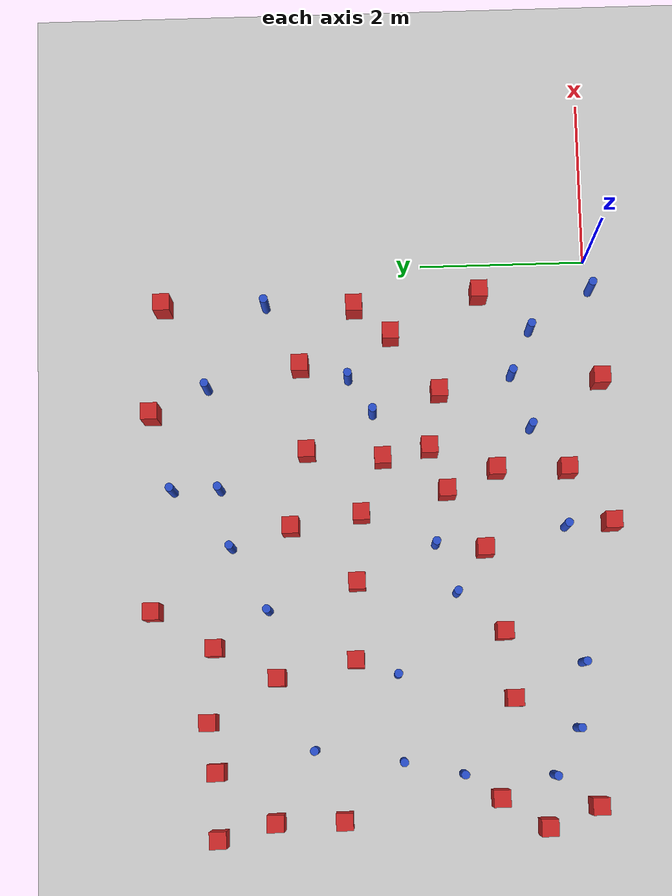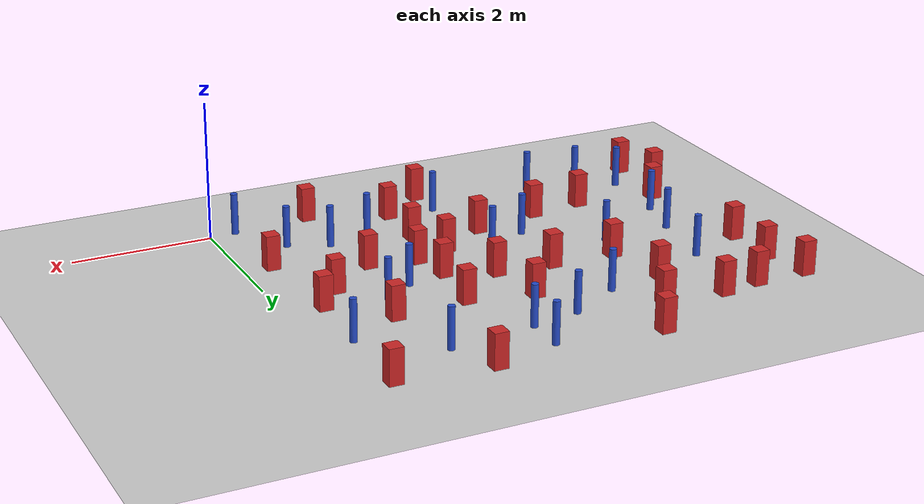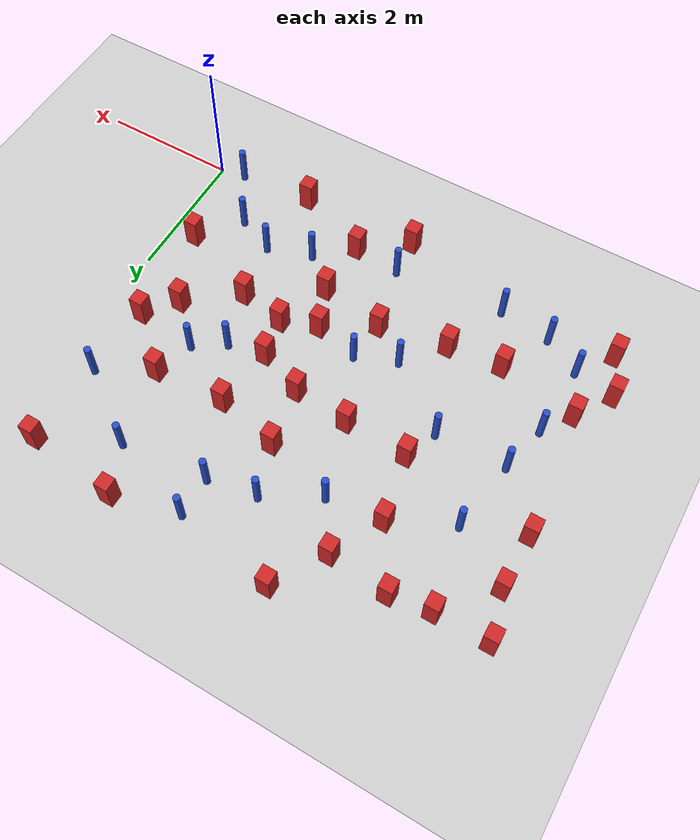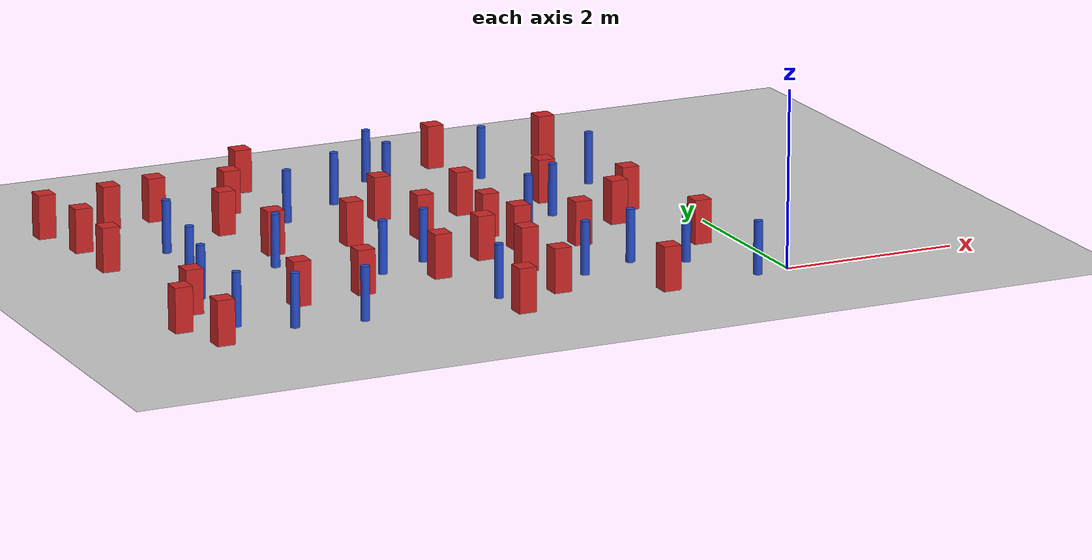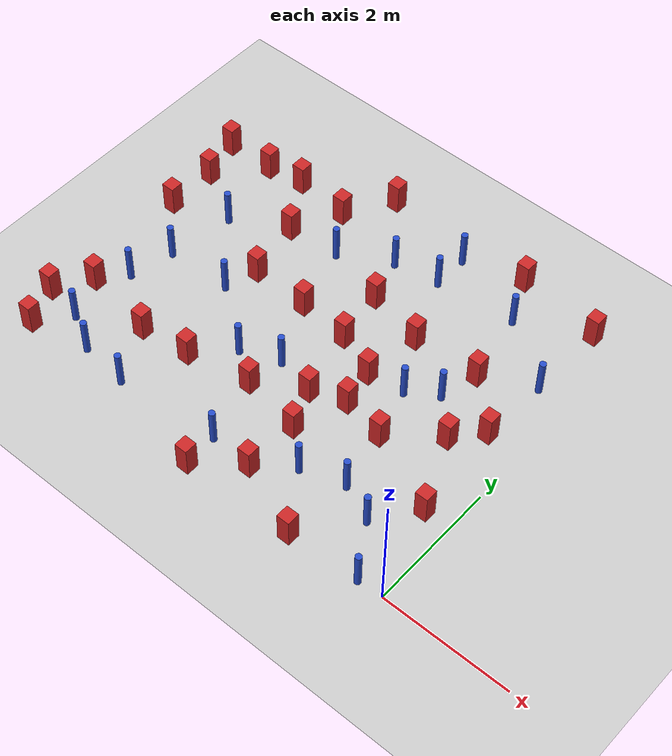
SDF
<sdf version="1.6">
 <world name="default">
  <model name="ground_plane">
   <static>1</static>
   <link name="link">
    <collision name="collision">
     <geometry><plane><normal>0 0 1</normal><size>100 100</size></plane></geometry>
     <surface><friction><ode><mu>100</mu><mu2>50</mu2></ode></friction></surface>
    </collision>
    <visual name="visual">
     <cast_shadows>0</cast_shadows>
     <geometry><plane><normal>0 0 1</normal><size>100 100</size></plane></geometry>
     <material>
      <ambient>1.0 1.0 1.0 1.0</ambient>
      <diffuse>0.8 0.8 0.8 1.0</diffuse>
      <specular>0.01 0.01 0.01 1.000000</specular>
     </material>
    </visual>
   </link>
  </model>
  <model name="square_post_obstacle0">
   <static>true</static>
   <pose>-4.97025781886 3.84912494383 1.91545236811e-07 -7.35059704564e-06 1.12565212e-07 2.39332434364e-05</pose>
   <link name="link">
    <pose>0 0 0.25 0 -0 0</pose>
    <inertial>
     <mass>100</mass>
     <inertia>
      <ixx>0.166667</ixx>
      <ixy>0</ixy>
      <ixz>0</ixz>
      <iyy>0.166667</iyy>
      <iyz>0</iyz>
      <izz>0.166667</izz>
     </inertia>
    </inertial>
    <collision name="collision"><geometry><box><size>.2 .2 .5</size></box></geometry></collision>
    <visual name="visual">
     <geometry><box><size>.2 .2 .5</size></box></geometry>
     <material>
      <script><name>Gazebo/Red</name><uri>file://media/materials/scripts/gazebo.material</uri></script>
     </material>
    </visual>
   </link>
  </model>
  <model name="square_post_obstacle1">
   <static>true</static>
   <pose>-1.24322853132 3.50042942154 1.91545236811e-07 -7.35059704564e-06 1.12565212e-07 2.39332434364e-05</pose>
   <link name="link">
    <pose>0 0 0.25 0 -0 0</pose>
    <inertial>
     <mass>100</mass>
     <inertia>
      <ixx>0.166667</ixx>
      <ixy>0</ixy>
      <ixz>0</ixz>
      <iyy>0.166667</iyy>
      <iyz>0</iyz>
      <izz>0.166667</izz>
     </inertia>
    </inertial>
    <collision name="collision"><geometry><box><size>.2 .2 .5</size></box></geometry></collision>
    <visual name="visual">
     <geometry><box><size>.2 .2 .5</size></box></geometry>
     <material>
      <script><name>Gazebo/Red</name><uri>file://media/materials/scripts/gazebo.material</uri></script>
     </material>
    </visual>
   </link>
  </model>
  <model name="square_post_obstacle4">
   <static>true</static>
   <pose>-3.86598333361 2.88226753271 1.91545236811e-07 -7.35059704564e-06 1.12565212e-07 2.39332434364e-05</pose>
   <link name="link">
    <pose>0 0 0.25 0 -0 0</pose>
    <inertial>
     <mass>100</mass>
     <inertia>
      <ixx>0.166667</ixx>
      <ixy>0</ixy>
      <ixz>0</ixz>
      <iyy>0.166667</iyy>
      <iyz>0</iyz>
      <izz>0.166667</izz>
     </inertia>
    </inertial>
    <collision name="collision"><geometry><box><size>.2 .2 .5</size></box></geometry></collision>
    <visual name="visual">
     <geometry><box><size>.2 .2 .5</size></box></geometry>
     <material>
      <script><name>Gazebo/Red</name><uri>file://media/materials/scripts/gazebo.material</uri></script>
     </material>
    </visual>
   </link>
  </model>
  <model name="square_post_obstacle15">
   <static>true</static>
   <pose>-6.63698604734 3.89297951094 1.91545236811e-07 -7.35059704564e-06 1.12565212e-07 2.39332434364e-05</pose>
   <link name="link">
    <pose>0 0 0.25 0 -0 0</pose>
    <inertial>
     <mass>100</mass>
     <inertia>
      <ixx>0.166667</ixx>
      <ixy>0</ixy>
      <ixz>0</ixz>
      <iyy>0.166667</iyy>
      <iyz>0</iyz>
      <izz>0.166667</izz>
     </inertia>
    </inertial>
    <collision name="collision"><geometry><box><size>.2 .2 .5</size></box></geometry></collision>
    <visual name="visual">
     <geometry><box><size>.2 .2 .5</size></box></geometry>
     <material>
      <script><name>Gazebo/Red</name><uri>file://media/materials/scripts/gazebo.material</uri></script>
     </material>
    </visual>
   </link>
  </model>
  <model name="square_post_obstacle16">
   <static>true</static>
   <pose>-0.397680209868 1.31862929755 1.91545236811e-07 -7.35059704564e-06 1.12565212e-07 2.39332434364e-05</pose>
   <link name="link">
    <pose>0 0 0.25 0 -0 0</pose>
    <inertial>
     <mass>100</mass>
     <inertia>
      <ixx>0.166667</ixx>
      <ixy>0</ixy>
      <ixz>0</ixz>
      <iyy>0.166667</iyy>
      <iyz>0</iyz>
      <izz>0.166667</izz>
     </inertia>
    </inertial>
    <collision name="collision"><geometry><box><size>.2 .2 .5</size></box></geometry></collision>
    <visual name="visual">
     <geometry><box><size>.2 .2 .5</size></box></geometry>
     <material>
      <script><name>Gazebo/Red</name><uri>file://media/materials/scripts/gazebo.material</uri></script>
     </material>
    </visual>
   </link>
  </model>
  <model name="square_post_obstacle23">
   <static>true</static>
   <pose>-2.27658814024 1.97460362556 1.91545236811e-07 -7.35059704564e-06 1.12565212e-07 2.39332434364e-05</pose>
   <link name="link">
    <pose>0 0 0.25 0 -0 0</pose>
    <inertial>
     <mass>100</mass>
     <inertia>
      <ixx>0.166667</ixx>
      <ixy>0</ixy>
      <ixz>0</ixz>
      <iyy>0.166667</iyy>
      <iyz>0</iyz>
      <izz>0.166667</izz>
     </inertia>
    </inertial>
    <collision name="collision"><geometry><box><size>.2 .2 .5</size></box></geometry></collision>
    <visual name="visual">
     <geometry><box><size>.2 .2 .5</size></box></geometry>
     <material>
      <script><name>Gazebo/Red</name><uri>file://media/materials/scripts/gazebo.material</uri></script>
     </material>
    </visual>
   </link>
  </model>
  <model name="square_post_obstacle27">
   <static>true</static>
   <pose>-3.18778566038 3.65261178495 1.91545236811e-07 -7.35059704564e-06 1.12565212e-07 2.39332434364e-05</pose>
   <link name="link">
    <pose>0 0 0.25 0 -0 0</pose>
    <inertial>
     <mass>100</mass>
     <inertia>
      <ixx>0.166667</ixx>
      <ixy>0</ixy>
      <ixz>0</ixz>
      <iyy>0.166667</iyy>
      <iyz>0</iyz>
      <izz>0.166667</izz>
     </inertia>
    </inertial>
    <collision name="collision"><geometry><box><size>.2 .2 .5</size></box></geometry></collision>
    <visual name="visual">
     <geometry><box><size>.2 .2 .5</size></box></geometry>
     <material>
      <script><name>Gazebo/Red</name><uri>file://media/materials/scripts/gazebo.material</uri></script>
     </material>
    </visual>
   </link>
  </model>
  <model name="pole_obstacle24">
   <static>true</static>
   <pose>-5.82380194081 3.42238824055 7.38925637345e-09 -8.47170692798e-08 1.24976764937e-08 -1.74513093023e-07</pose>
   <link name="link">
    <pose>0 0 0.3 0 -0 0</pose>
    <inertial>
     <mass>1</mass>
     <inertia><ixx>0.145833</ixx><ixy>0</ixy><ixz>0</ixz><iyy>0.145833</iyy><iyz>0</iyz><izz>0.125</izz></inertia>
    </inertial>
    <collision name="collision">
     <geometry><cylinder><radius>0.05</radius><length>.6</length></cylinder></geometry>
    </collision>
    <visual name="visual">
     <geometry><cylinder><radius>0.05</radius><length>.6</length></cylinder></geometry>
     <material>
      <script><name>Gazebo/Blue</name><uri>file://media/materials/scripts/gazebo.material</uri></script>
     </material>
    </visual>
   </link>
  </model>
  <model name="square_post_obstacle35">
   <static>true</static>
   <pose>-2.28471769667 3.44189347084 1.91545236811e-07 -7.35059704564e-06 1.12565212e-07 2.39332434364e-05</pose>
   <link name="link">
    <pose>0 0 0.25 0 -0 0</pose>
    <inertial>
     <mass>100</mass>
     <inertia>
      <ixx>0.166667</ixx>
      <ixy>0</ixy>
      <ixz>0</ixz>
      <iyy>0.166667</iyy>
      <iyz>0</iyz>
      <izz>0.166667</izz>
     </inertia>
    </inertial>
    <collision name="collision"><geometry><box><size>.2 .2 .5</size></box></geometry></collision>
    <visual name="visual">
     <geometry><box><size>.2 .2 .5</size></box></geometry>
     <material>
      <script><name>Gazebo/Red</name><uri>file://media/materials/scripts/gazebo.material</uri></script>
     </material>
    </visual>
   </link>
  </model>
  <model name="pole_obstacle39">
   <static>true</static>
   <pose>-0.380817609797 -0.040012553788 7.38925637345e-09 -8.47170692798e-08 1.24976764929e-08 -1.74513093025e-07</pose>
   <link name="link">
    <pose>0 0 0.3 0 -0 0</pose>
    <inertial>
     <mass>1</mass>
     <inertia><ixx>0.145833</ixx><ixy>0</ixy><ixz>0</ixz><iyy>0.145833</iyy><iyz>0</iyz><izz>0.125</izz></inertia>
    </inertial>
    <collision name="collision">
     <geometry><cylinder><radius>0.05</radius><length>.6</length></cylinder></geometry>
    </collision>
    <visual name="visual">
     <geometry><cylinder><radius>0.05</radius><length>.6</length></cylinder></geometry>
     <material>
      <script><name>Gazebo/Blue</name><uri>file://media/materials/scripts/gazebo.material</uri></script>
     </material>
    </visual>
   </link>
  </model>
  <model name="square_post_obstacle48">
   <static>true</static>
   <pose>-6.54903511514 0.136060916087 1.91545236811e-07 -7.35059704564e-06 1.12565212e-07 2.39332434364e-05</pose>
   <link name="link">
    <pose>0 0 0.25 0 -0 0</pose>
    <inertial>
     <mass>100</mass>
     <inertia>
      <ixx>0.166667</ixx>
      <ixy>0</ixy>
      <ixz>0</ixz>
      <iyy>0.166667</iyy>
      <iyz>0</iyz>
      <izz>0.166667</izz>
     </inertia>
    </inertial>
    <collision name="collision"><geometry><box><size>.2 .2 .5</size></box></geometry></collision>
    <visual name="visual">
     <geometry><box><size>.2 .2 .5</size></box></geometry>
     <material>
      <script><name>Gazebo/Red</name><uri>file://media/materials/scripts/gazebo.material</uri></script>
     </material>
    </visual>
   </link>
  </model>
  <model name="square_post_obstacle52">
   <static>true</static>
   <pose>-5.4665686495 4.66165060909 1.91545236811e-07 -7.35059704564e-06 1.12565212e-07 2.39332434364e-05</pose>
   <link name="link">
    <pose>0 0 0.25 0 -0 0</pose>
    <inertial>
     <mass>100</mass>
     <inertia>
      <ixx>0.166667</ixx>
      <ixy>0</ixy>
      <ixz>0</ixz>
      <iyy>0.166667</iyy>
      <iyz>0</iyz>
      <izz>0.166667</izz>
     </inertia>
    </inertial>
    <collision name="collision"><geometry><box><size>.2 .2 .5</size></box></geometry></collision>
    <visual name="visual">
     <geometry><box><size>.2 .2 .5</size></box></geometry>
     <material>
      <script><name>Gazebo/Red</name><uri>file://media/materials/scripts/gazebo.material</uri></script>
     </material>
    </visual>
   </link>
  </model>
  <model name="square_post_obstacle53">
   <static>true</static>
   <pose>-5.28162410226 1.07334737818 1.91545236811e-07 -7.35059704564e-06 1.12565212e-07 2.39332434364e-05</pose>
   <link name="link">
    <pose>0 0 0.25 0 -0 0</pose>
    <inertial>
     <mass>100</mass>
     <inertia>
      <ixx>0.166667</ixx>
      <ixy>0</ixy>
      <ixz>0</ixz>
      <iyy>0.166667</iyy>
      <iyz>0</iyz>
      <izz>0.166667</izz>
     </inertia>
    </inertial>
    <collision name="collision"><geometry><box><size>.2 .2 .5</size></box></geometry></collision>
    <visual name="visual">
     <geometry><box><size>.2 .2 .5</size></box></geometry>
     <material>
      <script><name>Gazebo/Red</name><uri>file://media/materials/scripts/gazebo.material</uri></script>
     </material>
    </visual>
   </link>
  </model>
  <model name="square_post_obstacle60">
   <static>true</static>
   <pose>-2.38868051023 2.53659035665 1.91545236811e-07 -7.35059704564e-06 1.12565212e-07 2.39332434364e-05</pose>
   <link name="link">
    <pose>0 0 0.25 0 -0 0</pose>
    <inertial>
     <mass>100</mass>
     <inertia>
      <ixx>0.166667</ixx>
      <ixy>0</ixy>
      <ixz>0</ixz>
      <iyy>0.166667</iyy>
      <iyz>0</iyz>
      <izz>0.166667</izz>
     </inertia>
    </inertial>
    <collision name="collision"><geometry><box><size>.2 .2 .5</size></box></geometry></collision>
    <visual name="visual">
     <geometry><box><size>.2 .2 .5</size></box></geometry>
     <material>
      <script><name>Gazebo/Red</name><uri>file://media/materials/scripts/gazebo.material</uri></script>
     </material>
    </visual>
   </link>
  </model>
  <model name="square_post_obstacle61">
   <static>true</static>
   <pose>-6.80562496174 4.56008774929 1.91545236811e-07 -7.35059704564e-06 1.12565212e-07 2.39332434364e-05</pose>
   <link name="link">
    <pose>0 0 0.25 0 -0 0</pose>
    <inertial>
     <mass>100</mass>
     <inertia>
      <ixx>0.166667</ixx>
      <ixy>0</ixy>
      <ixz>0</ixz>
      <iyy>0.166667</iyy>
      <iyz>0</iyz>
      <izz>0.166667</izz>
     </inertia>
    </inertial>
    <collision name="collision"><geometry><box><size>.2 .2 .5</size></box></geometry></collision>
    <visual name="visual">
     <geometry><box><size>.2 .2 .5</size></box></geometry>
     <material>
      <script><name>Gazebo/Red</name><uri>file://media/materials/scripts/gazebo.material</uri></script>
     </material>
    </visual>
   </link>
  </model>
  <model name="pole_obstacle60">
   <static>true</static>
   <pose>-0.864197074035 0.712315180211 7.38925637345e-09 -8.47170692799e-08 1.24976765008e-08 -1.7451309302e-07</pose>
   <link name="link">
    <pose>0 0 0.3 0 -0 0</pose>
    <inertial>
     <mass>1</mass>
     <inertia><ixx>0.145833</ixx><ixy>0</ixy><ixz>0</ixz><iyy>0.145833</iyy><iyz>0</iyz><izz>0.125</izz></inertia>
    </inertial>
    <collision name="collision">
     <geometry><cylinder><radius>0.05</radius><length>.6</length></cylinder></geometry>
    </collision>
    <visual name="visual">
     <geometry><cylinder><radius>0.05</radius><length>.6</length></cylinder></geometry>
     <material>
      <script><name>Gazebo/Blue</name><uri>file://media/materials/scripts/gazebo.material</uri></script>
     </material>
    </visual>
   </link>
  </model>
  <model name="square_post_obstacle68">
   <static>true</static>
   <pose>-1.49339212036 -0.113153167867 1.91545236811e-07 -7.35059704564e-06 1.12565212e-07 2.39332434364e-05</pose>
   <link name="link">
    <pose>0 0 0.25 0 -0 0</pose>
    <inertial>
     <mass>100</mass>
     <inertia>
      <ixx>0.166667</ixx>
      <ixy>0</ixy>
      <ixz>0</ixz>
      <iyy>0.166667</iyy>
      <iyz>0</iyz>
      <izz>0.166667</izz>
     </inertia>
    </inertial>
    <collision name="collision"><geometry><box><size>.2 .2 .5</size></box></geometry></collision>
    <visual name="visual">
     <geometry><box><size>.2 .2 .5</size></box></geometry>
     <material>
      <script><name>Gazebo/Red</name><uri>file://media/materials/scripts/gazebo.material</uri></script>
     </material>
    </visual>
   </link>
  </model>
  <model name="pole_obstacle77">
   <static>true</static>
   <pose>-1.4175305346 0.956889586621 7.38925637345e-09 -8.47170692799e-08 1.24976765135e-08 -1.74513093013e-07</pose>
   <link name="link">
    <pose>0 0 0.3 0 -0 0</pose>
    <inertial>
     <mass>1</mass>
     <inertia><ixx>0.145833</ixx><ixy>0</ixy><ixz>0</ixz><iyy>0.145833</iyy><iyz>0</iyz><izz>0.125</izz></inertia>
    </inertial>
    <collision name="collision">
     <geometry><cylinder><radius>0.05</radius><length>.6</length></cylinder></geometry>
    </collision>
    <visual name="visual">
     <geometry><cylinder><radius>0.05</radius><length>.6</length></cylinder></geometry>
     <material>
      <script><name>Gazebo/Blue</name><uri>file://media/materials/scripts/gazebo.material</uri></script>
     </material>
    </visual>
   </link>
  </model>
  <model name="square_post_obstacle79">
   <static>true</static>
   <pose>-4.49568398467 1.16003869923 1.91545236811e-07 -7.35059704564e-06 1.12565212e-07 2.39332434364e-05</pose>
   <link name="link">
    <pose>0 0 0.25 0 -0 0</pose>
    <inertial>
     <mass>100</mass>
     <inertia>
      <ixx>0.166667</ixx>
      <ixy>0</ixy>
      <ixz>0</ixz>
      <iyy>0.166667</iyy>
      <iyz>0</iyz>
      <izz>0.166667</izz>
     </inertia>
    </inertial>
    <collision name="collision"><geometry><box><size>.2 .2 .5</size></box></geometry></collision>
    <visual name="visual">
     <geometry><box><size>.2 .2 .5</size></box></geometry>
     <material>
      <script><name>Gazebo/Red</name><uri>file://media/materials/scripts/gazebo.material</uri></script>
     </material>
    </visual>
   </link>
  </model>
  <model name="pole_obstacle83">
   <static>true</static>
   <pose>-2.71773941472 4.49316833306 7.38925637345e-09 -8.47170692798e-08 1.24976765033e-08 -1.74513093019e-07</pose>
   <link name="link">
    <pose>0 0 0.3 0 -0 0</pose>
    <inertial>
     <mass>1</mass>
     <inertia><ixx>0.145833</ixx><ixy>0</ixy><ixz>0</ixz><iyy>0.145833</iyy><iyz>0</iyz><izz>0.125</izz></inertia>
    </inertial>
    <collision name="collision">
     <geometry><cylinder><radius>0.05</radius><length>.6</length></cylinder></geometry>
    </collision>
    <visual name="visual">
     <geometry><cylinder><radius>0.05</radius><length>.6</length></cylinder></geometry>
     <material>
      <script><name>Gazebo/Blue</name><uri>file://media/materials/scripts/gazebo.material</uri></script>
     </material>
    </visual>
   </link>
  </model>
  <model name="square_post_obstacle82">
   <static>true</static>
   <pose>-3.23187347072 -0.170444504514 1.91545236811e-07 -7.35059704564e-06 1.12565212e-07 2.39332434364e-05</pose>
   <link name="link">
    <pose>0 0 0.25 0 -0 0</pose>
    <inertial>
     <mass>100</mass>
     <inertia>
      <ixx>0.166667</ixx>
      <ixy>0</ixy>
      <ixz>0</ixz>
      <iyy>0.166667</iyy>
      <iyz>0</iyz>
      <izz>0.166667</izz>
     </inertia>
    </inertial>
    <collision name="collision"><geometry><box><size>.2 .2 .5</size></box></geometry></collision>
    <visual name="visual">
     <geometry><box><size>.2 .2 .5</size></box></geometry>
     <material>
      <script><name>Gazebo/Red</name><uri>file://media/materials/scripts/gazebo.material</uri></script>
     </material>
    </visual>
   </link>
  </model>
  <model name="pole_obstacle95">
   <static>true</static>
   <pose>-3.26624420597 0.37259614479 7.38925637345e-09 -8.47170692796e-08 1.249767648e-08 -1.74513093032e-07</pose>
   <link name="link">
    <pose>0 0 0.3 0 -0 0</pose>
    <inertial>
     <mass>1</mass>
     <inertia><ixx>0.145833</ixx><ixy>0</ixy><ixz>0</ixz><iyy>0.145833</iyy><iyz>0</iyz><izz>0.125</izz></inertia>
    </inertial>
    <collision name="collision">
     <geometry><cylinder><radius>0.05</radius><length>.6</length></cylinder></geometry>
    </collision>
    <visual name="visual">
     <geometry><cylinder><radius>0.05</radius><length>.6</length></cylinder></geometry>
     <material>
      <script><name>Gazebo/Blue</name><uri>file://media/materials/scripts/gazebo.material</uri></script>
     </material>
    </visual>
   </link>
  </model>
  <model name="square_post_obstacle85">
   <static>true</static>
   <pose>-6.42788382697 1.27540453783 1.91545236811e-07 -7.35059704564e-06 1.12565212e-07 2.39332434364e-05</pose>
   <link name="link">
    <pose>0 0 0.25 0 -0 0</pose>
    <inertial>
     <mass>100</mass>
     <inertia>
      <ixx>0.166667</ixx>
      <ixy>0</ixy>
      <ixz>0</ixz>
      <iyy>0.166667</iyy>
      <iyz>0</iyz>
      <izz>0.166667</izz>
     </inertia>
    </inertial>
    <collision name="collision"><geometry><box><size>.2 .2 .5</size></box></geometry></collision>
    <visual name="visual">
     <geometry><box><size>.2 .2 .5</size></box></geometry>
     <material>
      <script><name>Gazebo/Red</name><uri>file://media/materials/scripts/gazebo.material</uri></script>
     </material>
    </visual>
   </link>
  </model>
  <model name="pole_obstacle100">
   <static>true</static>
   <pose>-4.17454916638 3.94270140237 7.38925637345e-09 -8.47170692798e-08 1.24976764937e-08 -1.74513093023e-07</pose>
   <link name="link">
    <pose>0 0 0.3 0 -0 0</pose>
    <inertial>
     <mass>1</mass>
     <inertia><ixx>0.145833</ixx><ixy>0</ixy><ixz>0</ixz><iyy>0.145833</iyy><iyz>0</iyz><izz>0.125</izz></inertia>
    </inertial>
    <collision name="collision">
     <geometry><cylinder><radius>0.05</radius><length>.6</length></cylinder></geometry>
    </collision>
    <visual name="visual">
     <geometry><cylinder><radius>0.05</radius><length>.6</length></cylinder></geometry>
     <material>
      <script><name>Gazebo/Blue</name><uri>file://media/materials/scripts/gazebo.material</uri></script>
     </material>
    </visual>
   </link>
  </model>
  <model name="pole_obstacle102">
   <static>true</static>
   <pose>-6.14248402992 1.69378054967 7.38925637345e-09 -8.471706928e-08 1.24976765134e-08 -1.74513093015e-07</pose>
   <link name="link">
    <pose>0 0 0.3 0 -0 0</pose>
    <inertial>
     <mass>1</mass>
     <inertia><ixx>0.145833</ixx><ixy>0</ixy><ixz>0</ixz><iyy>0.145833</iyy><iyz>0</iyz><izz>0.125</izz></inertia>
    </inertial>
    <collision name="collision">
     <geometry><cylinder><radius>0.05</radius><length>.6</length></cylinder></geometry>
    </collision>
    <visual name="visual">
     <geometry><cylinder><radius>0.05</radius><length>.6</length></cylinder></geometry>
     <material>
      <script><name>Gazebo/Blue</name><uri>file://media/materials/scripts/gazebo.material</uri></script>
     </material>
    </visual>
   </link>
  </model>
  <model name="pole_obstacle107">
   <static>true</static>
   <pose>-6.18327196262 0.629941559392 7.38925637345e-09 -8.47170692799e-08 1.24976765038e-08 -1.74513093018e-07</pose>
   <link name="link">
    <pose>0 0 0.3 0 -0 0</pose>
    <inertial>
     <mass>1</mass>
     <inertia><ixx>0.145833</ixx><ixy>0</ixy><ixz>0</ixz><iyy>0.145833</iyy><iyz>0</iyz><izz>0.125</izz></inertia>
    </inertial>
    <collision name="collision">
     <geometry><cylinder><radius>0.05</radius><length>.6</length></cylinder></geometry>
    </collision>
    <visual name="visual">
     <geometry><cylinder><radius>0.05</radius><length>.6</length></cylinder></geometry>
     <material>
      <script><name>Gazebo/Blue</name><uri>file://media/materials/scripts/gazebo.material</uri></script>
     </material>
    </visual>
   </link>
  </model>
  <model name="square_post_obstacle96">
   <static>true</static>
   <pose>-4.15640698942 5.30566305121 1.91545236811e-07 -7.35059704564e-06 1.12565212e-07 2.39332434364e-05</pose>
   <link name="link">
    <pose>0 0 0.25 0 -0 0</pose>
    <inertial>
     <mass>100</mass>
     <inertia>
      <ixx>0.166667</ixx>
      <ixy>0</ixy>
      <ixz>0</ixz>
      <iyy>0.166667</iyy>
      <iyz>0</iyz>
      <izz>0.166667</izz>
     </inertia>
    </inertial>
    <collision name="collision"><geometry><box><size>.2 .2 .5</size></box></geometry></collision>
    <visual name="visual">
     <geometry><box><size>.2 .2 .5</size></box></geometry>
     <material>
      <script><name>Gazebo/Red</name><uri>file://media/materials/scripts/gazebo.material</uri></script>
     </material>
    </visual>
   </link>
  </model>
  <model name="square_post_obstacle98">
   <static>true</static>
   <pose>-2.55888870245 1.1815309597 1.91545236811e-07 -7.35059704564e-06 1.12565212e-07 2.39332434364e-05</pose>
   <link name="link">
    <pose>0 0 0.25 0 -0 0</pose>
    <inertial>
     <mass>100</mass>
     <inertia>
      <ixx>0.166667</ixx>
      <ixy>0</ixy>
      <ixz>0</ixz>
      <iyy>0.166667</iyy>
      <iyz>0</iyz>
      <izz>0.166667</izz>
     </inertia>
    </inertial>
    <collision name="collision"><geometry><box><size>.2 .2 .5</size></box></geometry></collision>
    <visual name="visual">
     <geometry><box><size>.2 .2 .5</size></box></geometry>
     <material>
      <script><name>Gazebo/Red</name><uri>file://media/materials/scripts/gazebo.material</uri></script>
     </material>
    </visual>
   </link>
  </model>
  <model name="pole_obstacle110">
   <static>true</static>
   <pose>-4.96443462099 2.42740442874 7.38925637345e-09 -8.47170692798e-08 1.24976764937e-08 -1.74513093023e-07</pose>
   <link name="link">
    <pose>0 0 0.3 0 -0 0</pose>
    <inertial>
     <mass>1</mass>
     <inertia><ixx>0.145833</ixx><ixy>0</ixy><ixz>0</ixz><iyy>0.145833</iyy><iyz>0</iyz><izz>0.125</izz></inertia>
    </inertial>
    <collision name="collision">
     <geometry><cylinder><radius>0.05</radius><length>.6</length></cylinder></geometry>
    </collision>
    <visual name="visual">
     <geometry><cylinder><radius>0.05</radius><length>.6</length></cylinder></geometry>
     <material>
      <script><name>Gazebo/Blue</name><uri>file://media/materials/scripts/gazebo.material</uri></script>
     </material>
    </visual>
   </link>
  </model>
  <model name="pole_obstacle112">
   <static>true</static>
   <pose>-5.98329214992 2.38992206263 7.38925637345e-09 -8.47170692798e-08 1.24976764937e-08 -1.74513093023e-07</pose>
   <link name="link">
    <pose>0 0 0.3 0 -0 0</pose>
    <inertial>
     <mass>1</mass>
     <inertia><ixx>0.145833</ixx><ixy>0</ixy><ixz>0</ixz><iyy>0.145833</iyy><iyz>0</iyz><izz>0.125</izz></inertia>
    </inertial>
    <collision name="collision">
     <geometry><cylinder><radius>0.05</radius><length>.6</length></cylinder></geometry>
    </collision>
    <visual name="visual">
     <geometry><cylinder><radius>0.05</radius><length>.6</length></cylinder></geometry>
     <material>
      <script><name>Gazebo/Blue</name><uri>file://media/materials/scripts/gazebo.material</uri></script>
     </material>
    </visual>
   </link>
  </model>
  <model name="square_post_obstacle101">
   <static>true</static>
   <pose>-0.882737397624 2.40069752558 1.91545236811e-07 -7.35059704564e-06 1.12565212e-07 2.39332434364e-05</pose>
   <link name="link">
    <pose>0 0 0.25 0 -0 0</pose>
    <inertial>
     <mass>100</mass>
     <inertia>
      <ixx>0.166667</ixx>
      <ixy>0</ixy>
      <ixz>0</ixz>
      <iyy>0.166667</iyy>
      <iyz>0</iyz>
      <izz>0.166667</izz>
     </inertia>
    </inertial>
    <collision name="collision"><geometry><box><size>.2 .2 .5</size></box></geometry></collision>
    <visual name="visual">
     <geometry><box><size>.2 .2 .5</size></box></geometry>
     <material>
      <script><name>Gazebo/Red</name><uri>file://media/materials/scripts/gazebo.material</uri></script>
     </material>
    </visual>
   </link>
  </model>
  <model name="pole_obstacle114">
   <static>true</static>
   <pose>-5.64610674155 0.330263888589 7.38925637345e-09 -8.47170692798e-08 1.24976765003e-08 -1.7451309302e-07</pose>
   <link name="link">
    <pose>0 0 0.3 0 -0 0</pose>
    <inertial>
     <mass>1</mass>
     <inertia><ixx>0.145833</ixx><ixy>0</ixy><ixz>0</ixz><iyy>0.145833</iyy><iyz>0</iyz><izz>0.125</izz></inertia>
    </inertial>
    <collision name="collision">
     <geometry><cylinder><radius>0.05</radius><length>.6</length></cylinder></geometry>
    </collision>
    <visual name="visual">
     <geometry><cylinder><radius>0.05</radius><length>.6</length></cylinder></geometry>
     <material>
      <script><name>Gazebo/Blue</name><uri>file://media/materials/scripts/gazebo.material</uri></script>
     </material>
    </visual>
   </link>
  </model>
  <model name="square_post_obstacle106">
   <static>true</static>
   <pose>-6.63959071088 3.0970154174 1.91545236811e-07 -7.35059704564e-06 1.12565212e-07 2.39332434364e-05</pose>
   <link name="link">
    <pose>0 0 0.25 0 -0 0</pose>
    <inertial>
     <mass>100</mass>
     <inertia>
      <ixx>0.166667</ixx>
      <ixy>0</ixy>
      <ixz>0</ixz>
      <iyy>0.166667</iyy>
      <iyz>0</iyz>
      <izz>0.166667</izz>
     </inertia>
    </inertial>
    <collision name="collision"><geometry><box><size>.2 .2 .5</size></box></geometry></collision>
    <visual name="visual">
     <geometry><box><size>.2 .2 .5</size></box></geometry>
     <material>
      <script><name>Gazebo/Red</name><uri>file://media/materials/scripts/gazebo.material</uri></script>
     </material>
    </visual>
   </link>
  </model>
  <model name="square_post_obstacle107">
   <static>true</static>
   <pose>-2.57836519348 0.328483387836 1.91545236811e-07 -7.35059704564e-06 1.12565212e-07 2.39332434364e-05</pose>
   <link name="link">
    <pose>0 0 0.25 0 -0 0</pose>
    <inertial>
     <mass>100</mass>
     <inertia>
      <ixx>0.166667</ixx>
      <ixy>0</ixy>
      <ixz>0</ixz>
      <iyy>0.166667</iyy>
      <iyz>0</iyz>
      <izz>0.166667</izz>
     </inertia>
    </inertial>
    <collision name="collision"><geometry><box><size>.2 .2 .5</size></box></geometry></collision>
    <visual name="visual">
     <geometry><box><size>.2 .2 .5</size></box></geometry>
     <material>
      <script><name>Gazebo/Red</name><uri>file://media/materials/scripts/gazebo.material</uri></script>
     </material>
    </visual>
   </link>
  </model>
  <model name="pole_obstacle122">
   <static>true</static>
   <pose>-2.06522358585 0.745845973623 7.38925637345e-09 -8.471706928e-08 1.24976765177e-08 -1.74513093012e-07</pose>
   <link name="link">
    <pose>0 0 0.3 0 -0 0</pose>
    <inertial>
     <mass>1</mass>
     <inertia><ixx>0.145833</ixx><ixy>0</ixy><ixz>0</ixz><iyy>0.145833</iyy><iyz>0</iyz><izz>0.125</izz></inertia>
    </inertial>
    <collision name="collision">
     <geometry><cylinder><radius>0.05</radius><length>.6</length></cylinder></geometry>
    </collision>
    <visual name="visual">
     <geometry><cylinder><radius>0.05</radius><length>.6</length></cylinder></geometry>
     <material>
      <script><name>Gazebo/Blue</name><uri>file://media/materials/scripts/gazebo.material</uri></script>
     </material>
    </visual>
   </link>
  </model>
  <model name="pole_obstacle124">
   <static>true</static>
   <pose>-1.83590255649 2.64179994518 7.38925637345e-09 -8.47170692799e-08 1.24976765053e-08 -1.74513093017e-07</pose>
   <link name="link">
    <pose>0 0 0.3 0 -0 0</pose>
    <inertial>
     <mass>1</mass>
     <inertia><ixx>0.145833</ixx><ixy>0</ixy><ixz>0</ixz><iyy>0.145833</iyy><iyz>0</iyz><izz>0.125</izz></inertia>
    </inertial>
    <collision name="collision">
     <geometry><cylinder><radius>0.05</radius><length>.6</length></cylinder></geometry>
    </collision>
    <visual name="visual">
     <geometry><cylinder><radius>0.05</radius><length>.6</length></cylinder></geometry>
     <material>
      <script><name>Gazebo/Blue</name><uri>file://media/materials/scripts/gazebo.material</uri></script>
     </material>
    </visual>
   </link>
  </model>
  <model name="pole_obstacle125">
   <static>true</static>
   <pose>-4.88435363116 0.235740482961 7.38925637345e-09 -8.471706928e-08 1.24976765136e-08 -1.74513093014e-07</pose>
   <link name="link">
    <pose>0 0 0.3 0 -0 0</pose>
    <inertial>
     <mass>1</mass>
     <inertia><ixx>0.145833</ixx><ixy>0</ixy><ixz>0</ixz><iyy>0.145833</iyy><iyz>0</iyz><izz>0.125</izz></inertia>
    </inertial>
    <collision name="collision">
     <geometry><cylinder><radius>0.05</radius><length>.6</length></cylinder></geometry>
    </collision>
    <visual name="visual">
     <geometry><cylinder><radius>0.05</radius><length>.6</length></cylinder></geometry>
     <material>
      <script><name>Gazebo/Blue</name><uri>file://media/materials/scripts/gazebo.material</uri></script>
     </material>
    </visual>
   </link>
  </model>
  <model name="pole_obstacle132">
   <static>true</static>
   <pose>-3.43605450938 1.93358650975 7.38925637345e-09 -8.47170692796e-08 1.24976764713e-08 -1.74513093037e-07</pose>
   <link name="link">
    <pose>0 0 0.3 0 -0 0</pose>
    <inertial>
     <mass>1</mass>
     <inertia><ixx>0.145833</ixx><ixy>0</ixy><ixz>0</ixz><iyy>0.145833</iyy><iyz>0</iyz><izz>0.125</izz></inertia>
    </inertial>
    <collision name="collision">
     <geometry><cylinder><radius>0.05</radius><length>.6</length></cylinder></geometry>
    </collision>
    <visual name="visual">
     <geometry><cylinder><radius>0.05</radius><length>.6</length></cylinder></geometry>
     <material>
      <script><name>Gazebo/Blue</name><uri>file://media/materials/scripts/gazebo.material</uri></script>
     </material>
    </visual>
   </link>
  </model>
  <model name="square_post_obstacle126">
   <static>true</static>
   <pose>-4.78497377221 2.91939412401 1.91545236811e-07 -7.35059704564e-06 1.12565212e-07 2.39332434364e-05</pose>
   <link name="link">
    <pose>0 0 0.25 0 -0 0</pose>
    <inertial>
     <mass>100</mass>
     <inertia>
      <ixx>0.166667</ixx>
      <ixy>0</ixy>
      <ixz>0</ixz>
      <iyy>0.166667</iyy>
      <iyz>0</iyz>
      <izz>0.166667</izz>
     </inertia>
    </inertial>
    <collision name="collision"><geometry><box><size>.2 .2 .5</size></box></geometry></collision>
    <visual name="visual">
     <geometry><box><size>.2 .2 .5</size></box></geometry>
     <material>
      <script><name>Gazebo/Red</name><uri>file://media/materials/scripts/gazebo.material</uri></script>
     </material>
    </visual>
   </link>
  </model>
  <model name="pole_obstacle150">
   <static>true</static>
   <pose>-2.71637763017 5.05796534437 7.38925637345e-09 -8.47170692798e-08 1.24976765033e-08 -1.74513093019e-07</pose>
   <link name="link">
    <pose>0 0 0.3 0 -0 0</pose>
    <inertial>
     <mass>1</mass>
     <inertia><ixx>0.145833</ixx><ixy>0</ixy><ixz>0</ixz><iyy>0.145833</iyy><iyz>0</iyz><izz>0.125</izz></inertia>
    </inertial>
    <collision name="collision">
     <geometry><cylinder><radius>0.05</radius><length>.6</length></cylinder></geometry>
    </collision>
    <visual name="visual">
     <geometry><cylinder><radius>0.05</radius><length>.6</length></cylinder></geometry>
     <material>
      <script><name>Gazebo/Blue</name><uri>file://media/materials/scripts/gazebo.material</uri></script>
     </material>
    </visual>
   </link>
  </model>
  <model name="pole_obstacle151">
   <static>true</static>
   <pose>-1.47883324682 4.63003805114 7.38925637345e-09 -8.47170692799e-08 1.24976765033e-08 -1.74513093018e-07</pose>
   <link name="link">
    <pose>0 0 0.3 0 -0 0</pose>
    <inertial>
     <mass>1</mass>
     <inertia><ixx>0.145833</ixx><ixy>0</ixy><ixz>0</ixz><iyy>0.145833</iyy><iyz>0</iyz><izz>0.125</izz></inertia>
    </inertial>
    <collision name="collision">
     <geometry><cylinder><radius>0.05</radius><length>.6</length></cylinder></geometry>
    </collision>
    <visual name="visual">
     <geometry><cylinder><radius>0.05</radius><length>.6</length></cylinder></geometry>
     <material>
      <script><name>Gazebo/Blue</name><uri>file://media/materials/scripts/gazebo.material</uri></script>
     </material>
    </visual>
   </link>
  </model>
  <model name="square_post_obstacle147">
   <static>true</static>
   <pose>-1.59888663242 1.83573324548 1.91545236811e-07 -7.35059704564e-06 1.12565212e-07 2.39332434364e-05</pose>
   <link name="link">
    <pose>0 0 0.25 0 -0 0</pose>
    <inertial>
     <mass>100</mass>
     <inertia>
      <ixx>0.166667</ixx>
      <ixy>0</ixy>
      <ixz>0</ixz>
      <iyy>0.166667</iyy>
      <iyz>0</iyz>
      <izz>0.166667</izz>
     </inertia>
    </inertial>
    <collision name="collision"><geometry><box><size>.2 .2 .5</size></box></geometry></collision>
    <visual name="visual">
     <geometry><box><size>.2 .2 .5</size></box></geometry>
     <material>
      <script><name>Gazebo/Red</name><uri>file://media/materials/scripts/gazebo.material</uri></script>
     </material>
    </visual>
   </link>
  </model>
  <model name="pole_obstacle159">
   <static>true</static>
   <pose>-4.02225365121 1.69971933078 7.38925637345e-09 -8.471706928e-08 1.2497676513e-08 -1.74513093015e-07</pose>
   <link name="link">
    <pose>0 0 0.3 0 -0 0</pose>
    <inertial>
     <mass>1</mass>
     <inertia><ixx>0.145833</ixx><ixy>0</ixy><ixz>0</ixz><iyy>0.145833</iyy><iyz>0</iyz><izz>0.125</izz></inertia>
    </inertial>
    <collision name="collision">
     <geometry><cylinder><radius>0.05</radius><length>.6</length></cylinder></geometry>
    </collision>
    <visual name="visual">
     <geometry><cylinder><radius>0.05</radius><length>.6</length></cylinder></geometry>
     <material>
      <script><name>Gazebo/Blue</name><uri>file://media/materials/scripts/gazebo.material</uri></script>
     </material>
    </visual>
   </link>
  </model>
  <model name="square_post_obstacle154">
   <static>true</static>
   <pose>-3.5076689349 1.35117126659 1.91545236811e-07 -7.35059704564e-06 1.12565212e-07 2.39332434364e-05</pose>
   <link name="link">
    <pose>0 0 0.25 0 -0 0</pose>
    <inertial>
     <mass>100</mass>
     <inertia>
      <ixx>0.166667</ixx>
      <ixy>0</ixy>
      <ixz>0</ixz>
      <iyy>0.166667</iyy>
      <iyz>0</iyz>
      <izz>0.166667</izz>
     </inertia>
    </inertial>
    <collision name="collision"><geometry><box><size>.2 .2 .5</size></box></geometry></collision>
    <visual name="visual">
     <geometry><box><size>.2 .2 .5</size></box></geometry>
     <material>
      <script><name>Gazebo/Red</name><uri>file://media/materials/scripts/gazebo.material</uri></script>
     </material>
    </visual>
   </link>
  </model>
  <model name="square_post_obstacle169">
   <static>true</static>
   <pose>-6.77284710212 0.736366558182 1.91545236811e-07 -7.35059704564e-06 1.12565212e-07 2.39332434364e-05</pose>
   <link name="link">
    <pose>0 0 0.25 0 -0 0</pose>
    <inertial>
     <mass>100</mass>
     <inertia>
      <ixx>0.166667</ixx>
      <ixy>0</ixy>
      <ixz>0</ixz>
      <iyy>0.166667</iyy>
      <iyz>0</iyz>
      <izz>0.166667</izz>
     </inertia>
    </inertial>
    <collision name="collision"><geometry><box><size>.2 .2 .5</size></box></geometry></collision>
    <visual name="visual">
     <geometry><box><size>.2 .2 .5</size></box></geometry>
     <material>
      <script><name>Gazebo/Red</name><uri>file://media/materials/scripts/gazebo.material</uri></script>
     </material>
    </visual>
   </link>
  </model>
  <model name="square_post_obstacle186">
   <static>true</static>
   <pose>-6.04079163671 4.57407906571 1.91545236811e-07 -7.35059704564e-06 1.12565212e-07 2.39332434364e-05</pose>
   <link name="link">
    <pose>0 0 0.25 0 -0 0</pose>
    <inertial>
     <mass>100</mass>
     <inertia>
      <ixx>0.166667</ixx>
      <ixy>0</ixy>
      <ixz>0</ixz>
      <iyy>0.166667</iyy>
      <iyz>0</iyz>
      <izz>0.166667</izz>
     </inertia>
    </inertial>
    <collision name="collision"><geometry><box><size>.2 .2 .5</size></box></geometry></collision>
    <visual name="visual">
     <geometry><box><size>.2 .2 .5</size></box></geometry>
     <material>
      <script><name>Gazebo/Red</name><uri>file://media/materials/scripts/gazebo.material</uri></script>
     </material>
    </visual>
   </link>
  </model>
  <model name="pole_obstacle197">
   <static>true</static>
   <pose>-3.41645776148 4.36689327455 7.38925637345e-09 -8.47170692798e-08 1.24976765033e-08 -1.74513093019e-07</pose>
   <link name="link">
    <pose>0 0 0.3 0 -0 0</pose>
    <inertial>
     <mass>1</mass>
     <inertia><ixx>0.145833</ixx><ixy>0</ixy><ixz>0</ixz><iyy>0.145833</iyy><iyz>0</iyz><izz>0.125</izz></inertia>
    </inertial>
    <collision name="collision">
     <geometry><cylinder><radius>0.05</radius><length>.6</length></cylinder></geometry>
    </collision>
    <visual name="visual">
     <geometry><cylinder><radius>0.05</radius><length>.6</length></cylinder></geometry>
     <material>
      <script><name>Gazebo/Blue</name><uri>file://media/materials/scripts/gazebo.material</uri></script>
     </material>
    </visual>
   </link>
  </model>
  <model name="square_post_obstacle194">
   <static>true</static>
   <pose>-0.457495134629 5.14448395062 1.91545236811e-07 -7.35059704564e-06 1.12565212e-07 2.39332434364e-05</pose>
   <link name="link">
    <pose>0 0 0.25 0 -0 0</pose>
    <inertial>
     <mass>100</mass>
     <inertia>
      <ixx>0.166667</ixx>
      <ixy>0</ixy>
      <ixz>0</ixz>
      <iyy>0.166667</iyy>
      <iyz>0</iyz>
      <izz>0.166667</izz>
     </inertia>
    </inertial>
    <collision name="collision"><geometry><box><size>.2 .2 .5</size></box></geometry></collision>
    <visual name="visual">
     <geometry><box><size>.2 .2 .5</size></box></geometry>
     <material>
      <script><name>Gazebo/Red</name><uri>file://media/materials/scripts/gazebo.material</uri></script>
     </material>
    </visual>
   </link>
  </model>
  <model name="pole_obstacle204">
   <static>true</static>
   <pose>-0.478300412236 3.90774151325 7.38925637345e-09 -8.471706928e-08 1.24976765163e-08 -1.74513093012e-07</pose>
   <link name="link">
    <pose>0 0 0.3 0 -0 0</pose>
    <inertial>
     <mass>1</mass>
     <inertia><ixx>0.145833</ixx><ixy>0</ixy><ixz>0</ixz><iyy>0.145833</iyy><iyz>0</iyz><izz>0.125</izz></inertia>
    </inertial>
    <collision name="collision">
     <geometry><cylinder><radius>0.05</radius><length>.6</length></cylinder></geometry>
    </collision>
    <visual name="visual">
     <geometry><cylinder><radius>0.05</radius><length>.6</length></cylinder></geometry>
     <material>
      <script><name>Gazebo/Blue</name><uri>file://media/materials/scripts/gazebo.material</uri></script>
     </material>
    </visual>
   </link>
  </model>
  <model name="pole_obstacle205">
   <static>true</static>
   <pose>-1.40190295368 2.92622674205 7.38925637345e-09 -8.47170692799e-08 1.24976765053e-08 -1.74513093017e-07</pose>
   <link name="link">
    <pose>0 0 0.3 0 -0 0</pose>
    <inertial>
     <mass>1</mass>
     <inertia><ixx>0.145833</ixx><ixy>0</ixy><ixz>0</ixz><iyy>0.145833</iyy><iyz>0</iyz><izz>0.125</izz></inertia>
    </inertial>
    <collision name="collision">
     <geometry><cylinder><radius>0.05</radius><length>.6</length></cylinder></geometry>
    </collision>
    <visual name="visual">
     <geometry><cylinder><radius>0.05</radius><length>.6</length></cylinder></geometry>
     <material>
      <script><name>Gazebo/Blue</name><uri>file://media/materials/scripts/gazebo.material</uri></script>
     </material>
    </visual>
   </link>
  </model>
  <model name="square_post_obstacle198">
   <static>true</static>
   <pose>-3.05208953211 2.80963103811 1.91545236811e-07 -7.35059704564e-06 1.12565212e-07 2.39332434364e-05</pose>
   <link name="link">
    <pose>0 0 0.25 0 -0 0</pose>
    <inertial>
     <mass>100</mass>
     <inertia>
      <ixx>0.166667</ixx>
      <ixy>0</ixy>
      <ixz>0</ixz>
      <iyy>0.166667</iyy>
      <iyz>0</iyz>
      <izz>0.166667</izz>
     </inertia>
    </inertial>
    <collision name="collision"><geometry><box><size>.2 .2 .5</size></box></geometry></collision>
    <visual name="visual">
     <geometry><box><size>.2 .2 .5</size></box></geometry>
     <material>
      <script><name>Gazebo/Red</name><uri>file://media/materials/scripts/gazebo.material</uri></script>
     </material>
    </visual>
   </link>
  </model>
  <model name="square_post_obstacle208">
   <static>true</static>
   <pose>-0.527943438309 2.83132367922 1.91545236811e-07 -7.35059704564e-06 1.12565212e-07 2.39332434364e-05</pose>
   <link name="link">
    <pose>0 0 0.25 0 -0 0</pose>
    <inertial>
     <mass>100</mass>
     <inertia>
      <ixx>0.166667</ixx>
      <ixy>0</ixy>
      <ixz>0</ixz>
      <iyy>0.166667</iyy>
      <iyz>0</iyz>
      <izz>0.166667</izz>
     </inertia>
    </inertial>
    <collision name="collision"><geometry><box><size>.2 .2 .5</size></box></geometry></collision>
    <visual name="visual">
     <geometry><box><size>.2 .2 .5</size></box></geometry>
     <material>
      <script><name>Gazebo/Red</name><uri>file://media/materials/scripts/gazebo.material</uri></script>
     </material>
    </visual>
   </link>
  </model>
  <model name="square_post_obstacle209">
   <static>true</static>
   <pose>-2.79850484872 1.77865584995 1.91545236811e-07 -7.35059704564e-06 1.12565212e-07 2.39332434364e-05</pose>
   <link name="link">
    <pose>0 0 0.25 0 -0 0</pose>
    <inertial>
     <mass>100</mass>
     <inertia>
      <ixx>0.166667</ixx>
      <ixy>0</ixy>
      <ixz>0</ixz>
      <iyy>0.166667</iyy>
      <iyz>0</iyz>
      <izz>0.166667</izz>
     </inertia>
    </inertial>
    <collision name="collision"><geometry><box><size>.2 .2 .5</size></box></geometry></collision>
    <visual name="visual">
     <geometry><box><size>.2 .2 .5</size></box></geometry>
     <material>
      <script><name>Gazebo/Red</name><uri>file://media/materials/scripts/gazebo.material</uri></script>
     </material>
    </visual>
   </link>
  </model>
  <model name="square_post_obstacle215">
   <static>true</static>
   <pose>-4.60308497406 4.5776465331 1.91545236811e-07 -7.35059704564e-06 1.12565212e-07 2.39332434364e-05</pose>
   <link name="link">
    <pose>0 0 0.25 0 -0 0</pose>
    <inertial>
     <mass>100</mass>
     <inertia>
      <ixx>0.166667</ixx>
      <ixy>0</ixy>
      <ixz>0</ixz>
      <iyy>0.166667</iyy>
      <iyz>0</iyz>
      <izz>0.166667</izz>
     </inertia>
    </inertial>
    <collision name="collision"><geometry><box><size>.2 .2 .5</size></box></geometry></collision>
    <visual name="visual">
     <geometry><box><size>.2 .2 .5</size></box></geometry>
     <material>
      <script><name>Gazebo/Red</name><uri>file://media/materials/scripts/gazebo.material</uri></script>
     </material>
    </visual>
   </link>
  </model>
  <model name="square_post_obstacle220">
   <static>true</static>
   <pose>-1.77946992117 5.30486361157 1.91545236811e-07 -7.35059704564e-06 1.12565212e-07 2.39332434364e-05</pose>
   <link name="link">
    <pose>0 0 0.25 0 -0 0</pose>
    <inertial>
     <mass>100</mass>
     <inertia>
      <ixx>0.166667</ixx>
      <ixy>0</ixy>
      <ixz>0</ixz>
      <iyy>0.166667</iyy>
      <iyz>0</iyz>
      <izz>0.166667</izz>
     </inertia>
    </inertial>
    <collision name="collision"><geometry><box><size>.2 .2 .5</size></box></geometry></collision>
    <visual name="visual">
     <geometry><box><size>.2 .2 .5</size></box></geometry>
     <material>
      <script><name>Gazebo/Red</name><uri>file://media/materials/scripts/gazebo.material</uri></script>
     </material>
    </visual>
   </link>
  </model>
 </world>
</sdf>
